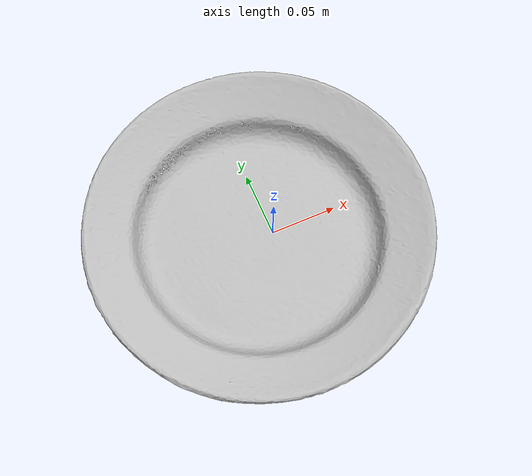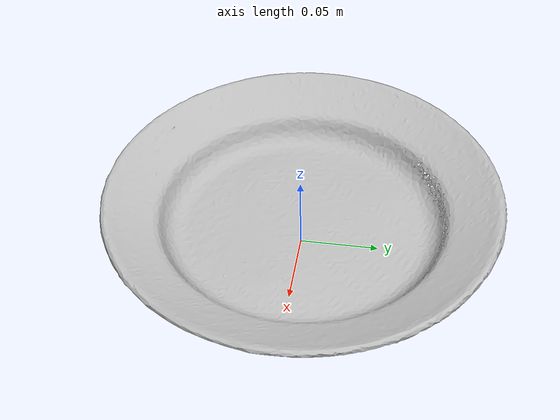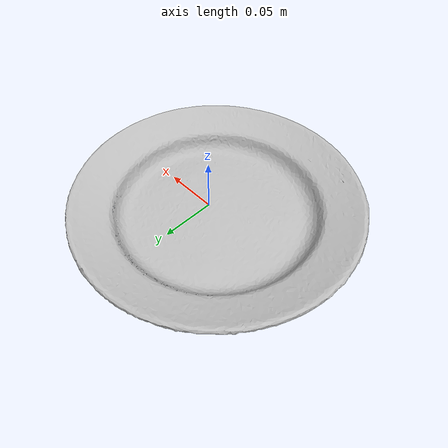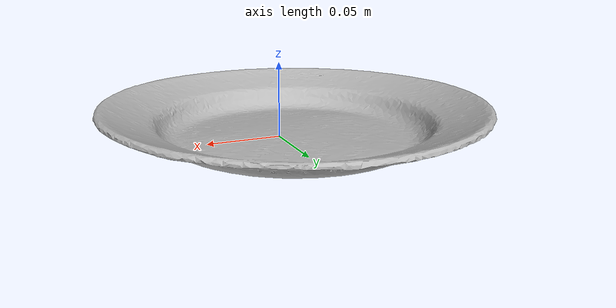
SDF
<?xml version='1.0'?>
<sdf version="1.4">
  <model name="plate">
    <static>false</static>
    <link name="link">
      <inertial>
        <pose>-0.010005972478719947 0.0012469395633811198 0.008849692580074854 2.6339554528331033 -1.5614170415643078 -2.157546143298991</pose>
        <mass>5.7831861697350493e-05</mass>
        <inertia>
          <ixx>5.195351956272858e-07</ixx>
          <ixy>-1.3088547942039716e-22</ixy>
          <ixz>1.6318619184924375e-23</ixz>
          <iyy>2.6593460524929575e-07</iyy>
          <iyz>-2.0263823954967226e-23</iyz>
          <izz>2.6384620259449506e-07</izz>
        </inertia>
      </inertial>
      <collision name="collision">
        <geometry>
          <mesh>
            <!-- Use a downsampled mesh for collisions -->
            <uri>model://029_plate/google_16k/029_plate.obj</uri>
            </mesh>
        </geometry>
        <surface>
          <friction>
            <ode>
              <mu>0.9</mu>
              <mu2>0.9</mu2>
            </ode>
          </friction>
          <contact>
            <ode>
              <kp>1000000000000.0</kp>
              <kd>1</kd>
              <min_depth>0.0001</min_depth>
              <max_vel>0.01</max_vel>
            </ode>
          </contact>
          <bounce>
            <restitution_coefficient>0.1</restitution_coefficient>
            <threshold>1000.0</threshold>
          </bounce>
        </surface>
      </collision>
      <visual name="visual">
        <geometry>
          <mesh>
            <uri>model://029_plate/google_16k/029_plate.dae</uri>
            </mesh>
        </geometry>
      </visual>
    </link>
  </model>
</sdf>
